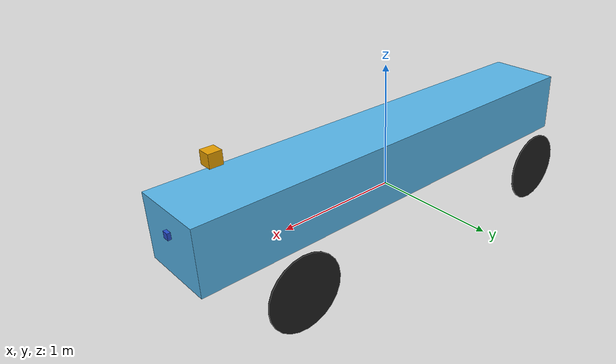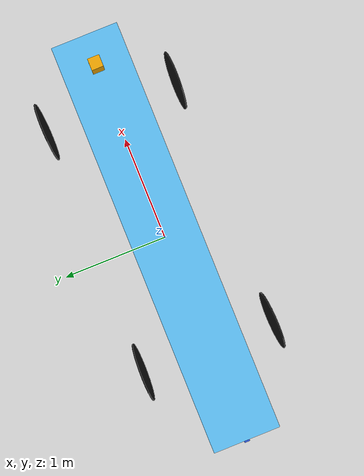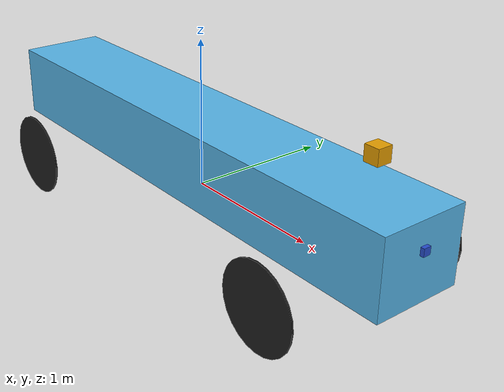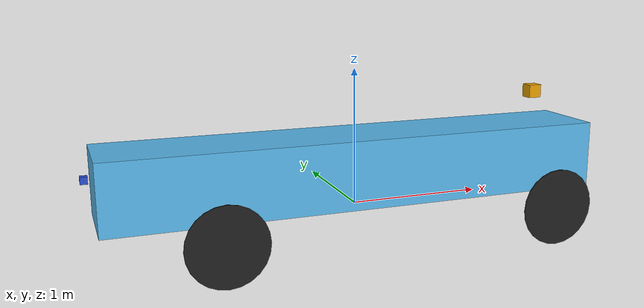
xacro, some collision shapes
<?xml version="1.0"?>

<robot name="mybot" xmlns:xacro="http://www.ros.org/wiki/xacro">

  <xacro:property name="PI" value="3.1415926535897931"/>

  <xacro:property name="chassisHeight" value="0.5"/>
  <xacro:property name="chassisLength" value="3.7"/>
  <xacro:property name="chassisWidth" value="0.6"/>
  <xacro:property name="chassisMass" value="0.5"/>

  <xacro:property name="wheelWidth" value="0.01"/>
  <xacro:property name="wheelRadius" value="0.28"/>
  <xacro:property name="wheelPos" value="0.2"/>
  <xacro:property name="wheelMass" value="0.1"/>

  <xacro:property name="cameraSize" value="0.05"/>
  <xacro:property name="cameraMass" value="0.01"/>

  <xacro:include filename="$(find mybot_description)/urdf/mybot.gazebo" />
  <xacro:include filename="$(find mybot_description)/urdf/materials.xacro" />
  <xacro:include filename="$(find mybot_description)/urdf/macros.xacro" />

  <link name="footprint" />

  <joint name="base_joint" type="fixed">
    <parent link="footprint"/>
    <child link="chassis"/>
  </joint>

  <link name="chassis">
    <collision>
      <origin xyz="0 0 ${wheelRadius}" rpy="0 0 0"/>
      <geometry>
<box size="${chassisLength} ${chassisWidth} ${chassisHeight}"/>
	     </geometry>
    </collision>

    <visual>
      <origin xyz="-0.05 0 0.28" rpy="0 0 1.5707"/>
      <geometry>
	<mesh filename="package://kpit_cp/meshes/car_018.dae" scale="30 30 30"/>
      </geometry>
    </visual>

    <inertial>
      <origin xyz="0 0 0" rpy="0 0 0"/>
      <mass value="${chassisMass}"/>
      <box_inertia m="${chassisMass}" x="${chassisLength}" y="${chassisWidth}" z="${chassisHeight}"/>
    </inertial>
  </link>

  <wheel lr="left_front" tY="0.66" tx="1.34"/>
  <wheel lr="right_front" tY="-0.65" tx="1.34"/>
  <wheel lr="left_back" tY="0.66" tx="-1.1"/>
  <wheel lr="right_back" tY="-0.65" tx="-1.1"/>

  <joint name="camera_joint1" type="fixed">
  	<axis xyz="0 1 0" />
    <origin xyz="${chassisLength/2} 0 ${cameraSize+wheelRadius+cameraSize/2}" rpy="0 0 0"/>
    <parent link="chassis"/>
    <child link="camera1"/>
  </joint>

  <link name="camera1">
    <collision>
      <origin xyz="0 0 0" rpy="0 0 0"/>
      <geometry>
	<box size="${cameraSize} ${cameraSize} ${cameraSize}"/>
      </geometry>
    </collision>

    <visual>
      <origin xyz="0 0 0" rpy="0 0 0"/>
      <geometry>
	<box size="${cameraSize} ${cameraSize} ${cameraSize}"/>
      </geometry>
      <material name="blue"/>
    </visual>

    <inertial>
      <mass value="${cameraMass}" />
      <origin xyz="0 0 0" rpy="0 0 0"/>
      <box_inertia m="${cameraMass}" x="${cameraSize}" y="${cameraSize}" z="${cameraSize}" />
    </inertial>
  </link>

  <joint name="camera_joint2" type="fixed">
  	<axis xyz="0 1 0" />
    <origin xyz="${-cameraSize-chassisLength/2} 0 ${cameraSize+wheelRadius+cameraSize/2}" rpy="0 0 3.14"/>
    <parent link="chassis"/>
    <child link="camera2"/>
  </joint>

  <link name="camera2">
    <collision>
      <origin xyz="0 0 0" rpy="0 0 0"/>
      <geometry>
	<box size="${cameraSize} ${cameraSize} ${cameraSize}"/>
      </geometry>
    </collision>

    <visual>
      <origin xyz="0 0 0" rpy="0 0 0"/>
      <geometry>
	<box size="${cameraSize} ${cameraSize} ${cameraSize}"/>
      </geometry>
      <material name="blue"/>
    </visual>

    <inertial>
      <mass value="${cameraMass}" />
      <origin xyz="0 0 0" rpy="0 0 0"/>
      <box_inertia m="${cameraMass}" x="${cameraSize}" y="${cameraSize}" z="${cameraSize}" />
    </inertial>
  </link>

  <joint name="hokuyo_joint" type="fixed">
    <axis xyz="0 1 0" />
    <origin xyz="1.5 0 0.76" rpy="0 0 0"/>
    <parent link="chassis"/>
    <child link="hokuyo_link"/>
  </joint>

  <link name="hokuyo_link">
    <collision>
      <origin xyz="0 0 0" rpy="0 0 0"/>
      <geometry>
    <box size="0.1 0.1 0.1"/>
      </geometry>
    </collision>

    <visual>
      <origin xyz="0 0 0" rpy="0 0 0"/>
      <geometry>
        <mesh filename="package://kpit_cp/meshes/hokuyo.dae"/>
      </geometry>
    </visual>

    <inertial>
      <mass value="1e-5" />
      <origin xyz="0 0 0" rpy="0 0 0"/>
      <inertia ixx="1e-6" ixy="0" ixz="0" iyy="1e-6" iyz="0" izz="1e-6" />
    </inertial>
  </link>

</robot>

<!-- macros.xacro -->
<robot>
     <macro name="cylinder_inertia" params="m r h">
        <inertia  ixx="0.01" ixy = "0" ixz = "0"
                  iyy="0.01" iyz = "0"
                  izz="0.01" />
      </macro>

      <macro name="box_inertia" params="m x y z">
        <inertia  ixx="1" ixy = "0" ixz = "0"
                  iyy="1" iyz = "0"
                  izz="1" />
      </macro>

     <macro name="wheel" params="lr tY tx">

       <link name="${lr}_wheel">
        <collision>
          <origin xyz="0 0 0" rpy="0 ${PI/2} ${PI/2}" />
          <geometry>
           <cylinder length="${wheelWidth}" radius="${wheelRadius}"/>
          </geometry>
        </collision>

        <visual>
          <origin xyz="0 0 0" rpy="0 ${PI/2} ${PI/2}" />
          <geometry>
           <cylinder length="${wheelWidth}" radius="${wheelRadius}"/>
          </geometry>
          <material name="black"/>
        </visual>

        <inertial>
          <origin xyz="0 0 0" rpy="0 ${PI/2} ${PI/2}" />
          <mass value="${wheelMass}"/>
          <cylinder_inertia m="${wheelMass}" r="${wheelRadius}" h="${wheelWidth}"/>
        </inertial>
       </link>

        <gazebo reference="${lr}_wheel">
          <mu1 value="1000.0"/>
          <mu2 value="1000.0"/>
          <kp  value="10000000.0" />
          <kd  value="1.0" />
          <fdir1 value="1 0 0"/>
          <material>Gazebo/Black</material>
        </gazebo>

       <joint name="${lr}_wheel_hinge" type="continuous">
          <parent link="chassis"/>
          <child link="${lr}_wheel"/>
          <origin xyz="${+tx} ${tY} 0" rpy="0 0 0" />
          <axis xyz="0 1 0" rpy="0 0 0" />
          <limit effort="100" velocity="100"/>
          <joint_properties damping="0.0" friction="0.0"/>
        </joint>

        <transmission name="${lr}_trans">
        <type>transmission_interface/SimpleTransmission</type>
        <joint name="${lr}_wheel_hinge">
	       <hardware_interface>hardware_interface/EffortJointInterface</hardware_interface>
	    </joint>
        <actuator name="${lr}Motor">
          <hardware_interface>hardware_interface/EffortJointInterface</hardware_interface>
          <mechanicalReduction>10</mechanicalReduction>
         </actuator>
      </transmission>

         </macro>

</robot>
